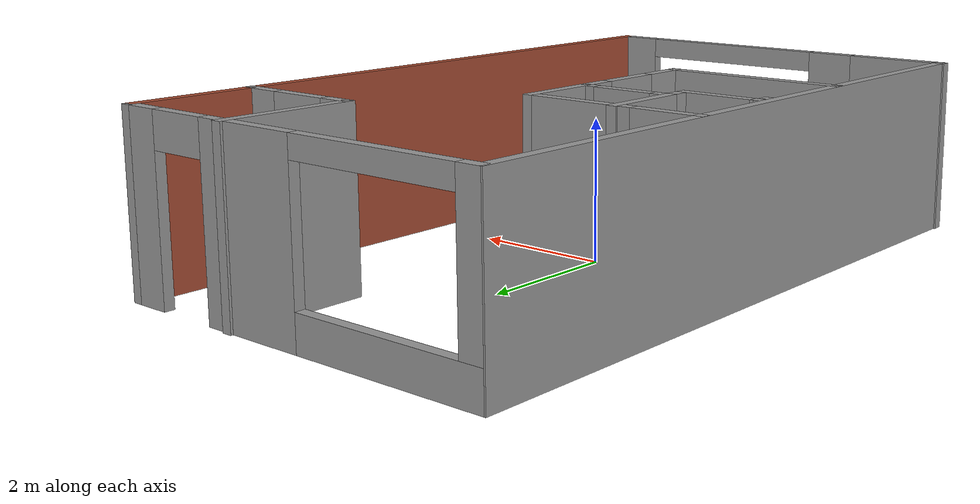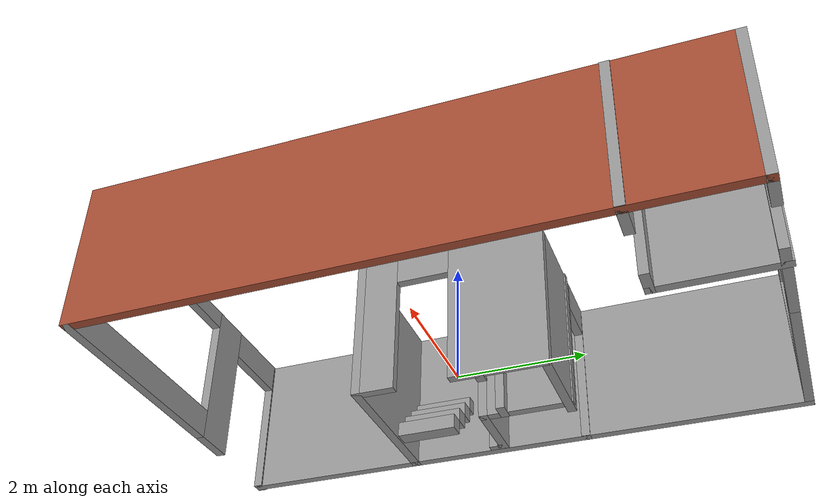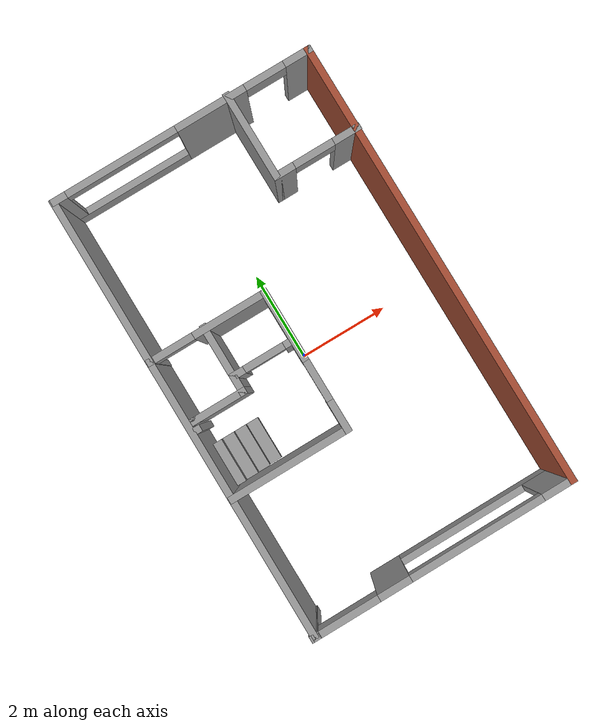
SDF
<?xml version='1.0'?>
<sdf version='1.6'>
  <model name='Livingroomlab'>
    <pose frame=''>0.248675 0.131128 0 0 -0 0</pose>
    <link name='Stairs_1'>
      <visual name='Stairs_1_Visual_0'>
        <pose frame=''>-1.93298 -1.24451 0.125 0 0 -1.5708</pose>
        <geometry>
          <box>
            <size>1 0.2765 0.25</size>
          </box>
        </geometry>
        <material>
          <script>
            <uri>file://media/materials/scripts/gazebo.material</uri>
            <name>Gazebo/Grey</name>
          </script>
          <ambient>1 1 1 1</ambient>
        </material>
        <meta>
          <layer>0</layer>
        </meta>
      </visual>
      <collision name='Stairs_1_Collision_0'>
        <geometry>
          <box>
            <size>1 0.2765 0.25</size>
          </box>
        </geometry>
        <pose frame=''>-1.93298 -1.24451 0.125 0 0 -1.5708</pose>
      </collision>
      <visual name='Stairs_1_Visual_1'>
        <pose frame=''>-2.20948 -1.24451 0.375 0 0 -1.5708</pose>
        <geometry>
          <box>
            <size>1 0.2765 0.25</size>
          </box>
        </geometry>
        <material>
          <script>
            <uri>file://media/materials/scripts/gazebo.material</uri>
            <name>Gazebo/Grey</name>
          </script>
          <ambient>1 1 1 1</ambient>
        </material>
        <meta>
          <layer>0</layer>
        </meta>
      </visual>
      <collision name='Stairs_1_Collision_1'>
        <geometry>
          <box>
            <size>1 0.2765 0.25</size>
          </box>
        </geometry>
        <pose frame=''>-2.20948 -1.24451 0.375 0 0 -1.5708</pose>
      </collision>
      <visual name='Stairs_1_Visual_2'>
        <pose frame=''>-2.48598 -1.24451 0.625 0 0 -1.5708</pose>
        <geometry>
          <box>
            <size>1 0.2765 0.25</size>
          </box>
        </geometry>
        <material>
          <script>
            <uri>file://media/materials/scripts/gazebo.material</uri>
            <name>Gazebo/Grey</name>
          </script>
          <ambient>1 1 1 1</ambient>
        </material>
        <meta>
          <layer>0</layer>
        </meta>
      </visual>
      <collision name='Stairs_1_Collision_2'>
        <geometry>
          <box>
            <size>1 0.2765 0.25</size>
          </box>
        </geometry>
        <pose frame=''>-2.48598 -1.24451 0.625 0 0 -1.5708</pose>
      </collision>
      <visual name='Stairs_1_Visual_3'>
        <pose frame=''>-2.76248 -1.24451 0.875 0 0 -1.5708</pose>
        <geometry>
          <box>
            <size>1 0.2765 0.25</size>
          </box>
        </geometry>
        <material>
          <script>
            <uri>file://media/materials/scripts/gazebo.material</uri>
            <name>Gazebo/Grey</name>
          </script>
          <ambient>1 1 1 1</ambient>
        </material>
        <meta>
          <layer>0</layer>
        </meta>
      </visual>
      <collision name='Stairs_1_Collision_3'>
        <geometry>
          <box>
            <size>1 0.2765 0.25</size>
          </box>
        </geometry>
        <pose frame=''>-2.76248 -1.24451 0.875 0 0 -1.5708</pose>
      </collision>
    </link>
    <link name='Wall_10'>
      <collision name='Wall_10_Collision'>
        <geometry>
          <box>
            <size>0.15 0.15 2.5</size>
          </box>
        </geometry>
        <pose frame=''>0 0 1.25 0 -0 0</pose>
      </collision>
      <visual name='Wall_10_Visual'>
        <pose frame=''>0 0 1.25 0 -0 0</pose>
        <geometry>
          <box>
            <size>0.15 0.15 2.5</size>
          </box>
        </geometry>
        <material>
          <script>
            <uri>file://media/materials/scripts/gazebo.material</uri>
            <name>Gazebo/Grey</name>
          </script>
          <ambient>1 1 1 1</ambient>
        </material>
        <meta>
          <layer>0</layer>
        </meta>
      </visual>
      <pose frame=''>2.91851 4.90773 0 0 -0 0</pose>
    </link>
    <link name='Wall_15'>
      <pose frame=''>0.016769 4.90773 0 0 -0 3.14159</pose>
      <visual name='Wall_15_Visual_0'>
        <pose frame=''>-2.65996 0 1.25 0 -0 0</pose>
        <geometry>
          <box>
            <size>0.633556 0.15 2.5</size>
          </box>
        </geometry>
        <material>
          <script>
            <uri>file://media/materials/scripts/gazebo.material</uri>
            <name>Gazebo/Grey</name>
          </script>
          <ambient>1 1 1 1</ambient>
        </material>
        <meta>
          <layer>0</layer>
        </meta>
      </visual>
      <collision name='Wall_15_Collision_0'>
        <geometry>
          <box>
            <size>0.633556 0.15 2.5</size>
          </box>
        </geometry>
        <pose frame=''>-2.65996 0 1.25 0 -0 0</pose>
      </collision>
      <visual name='Wall_15_Visual_1'>
        <pose frame=''>-0.65252 0 1.25 0 -0 0</pose>
        <geometry>
          <box>
            <size>1.58132 0.15 2.5</size>
          </box>
        </geometry>
        <material>
          <script>
            <uri>file://media/materials/scripts/gazebo.material</uri>
            <name>Gazebo/Grey</name>
          </script>
          <ambient>1 1 1 1</ambient>
        </material>
        <meta>
          <layer>0</layer>
        </meta>
      </visual>
      <collision name='Wall_15_Collision_1'>
        <geometry>
          <box>
            <size>1.58132 0.15 2.5</size>
          </box>
        </geometry>
        <pose frame=''>-0.65252 0 1.25 0 -0 0</pose>
      </collision>
      <visual name='Wall_15_Visual_2'>
        <pose frame=''>1.55744 0 0.25 0 -0 0</pose>
        <geometry>
          <box>
            <size>2.8386 0.15 0.5</size>
          </box>
        </geometry>
        <material>
          <script>
            <uri>file://media/materials/scripts/gazebo.material</uri>
            <name>Gazebo/Grey</name>
          </script>
          <ambient>1 1 1 1</ambient>
        </material>
        <meta>
          <layer>0</layer>
        </meta>
      </visual>
      <collision name='Wall_15_Collision_2'>
        <geometry>
          <box>
            <size>2.8386 0.15 0.5</size>
          </box>
        </geometry>
        <pose frame=''>1.55744 0 0.25 0 -0 0</pose>
      </collision>
      <visual name='Wall_15_Visual_3'>
        <pose frame=''>2.80744 0 1.5 0 -0 0</pose>
        <geometry>
          <box>
            <size>0.338597 0.15 2</size>
          </box>
        </geometry>
        <material>
          <script>
            <uri>file://media/materials/scripts/gazebo.material</uri>
            <name>Gazebo/Grey</name>
          </script>
          <ambient>1 1 1 1</ambient>
        </material>
        <meta>
          <layer>0</layer>
        </meta>
      </visual>
      <collision name='Wall_15_Collision_3'>
        <geometry>
          <box>
            <size>0.338597 0.15 2</size>
          </box>
        </geometry>
        <pose frame=''>2.80744 0 1.5 0 -0 0</pose>
      </collision>
      <visual name='Wall_15_Visual_4'>
        <pose frame=''>-1.89318 0 2.25 0 -0 0</pose>
        <geometry>
          <box>
            <size>0.9 0.15 0.5</size>
          </box>
        </geometry>
        <material>
          <script>
            <uri>file://media/materials/scripts/gazebo.material</uri>
            <name>Gazebo/Grey</name>
          </script>
          <ambient>1 1 1 1</ambient>
        </material>
        <meta>
          <layer>0</layer>
        </meta>
      </visual>
      <collision name='Wall_15_Collision_4'>
        <geometry>
          <box>
            <size>0.9 0.15 0.5</size>
          </box>
        </geometry>
        <pose frame=''>-1.89318 0 2.25 0 -0 0</pose>
      </collision>
      <visual name='Wall_15_Visual_5'>
        <pose frame=''>1.38814 0 2.35 0 -0 0</pose>
        <geometry>
          <box>
            <size>2.5 0.15 0.3</size>
          </box>
        </geometry>
        <material>
          <script>
            <uri>file://media/materials/scripts/gazebo.material</uri>
            <name>Gazebo/Grey</name>
          </script>
          <ambient>1 1 1 1</ambient>
        </material>
        <meta>
          <layer>0</layer>
        </meta>
      </visual>
      <collision name='Wall_15_Collision_5'>
        <geometry>
          <box>
            <size>2.5 0.15 0.3</size>
          </box>
        </geometry>
        <pose frame=''>1.38814 0 2.35 0 -0 0</pose>
      </collision>
    </link>
    <link name='Wall_16'>
      <collision name='Wall_16_Collision'>
        <geometry>
          <box>
            <size>10 0.15 2.5</size>
          </box>
        </geometry>
        <pose frame=''>0 0 1.25 0 -0 0</pose>
      </collision>
      <visual name='Wall_16_Visual'>
        <pose frame=''>0 0 1.25 0 -0 0</pose>
        <geometry>
          <box>
            <size>10 0.15 2.5</size>
          </box>
        </geometry>
        <material>
          <script>
            <uri>file://media/materials/scripts/gazebo.material</uri>
            <name>Gazebo/Grey</name>
          </script>
          <ambient>1 1 1 1</ambient>
        </material>
        <meta>
          <layer>0</layer>
        </meta>
      </visual>
      <pose frame=''>-2.90823 -0.017274 0 0 0 -1.5708</pose>
    </link>
    <link name='Wall_17'>
      <collision name='Wall_17_Collision'>
        <geometry>
          <box>
            <size>0.15 0.15 2.5</size>
          </box>
        </geometry>
        <pose frame=''>0 0 1.25 0 -0 0</pose>
      </collision>
      <visual name='Wall_17_Visual'>
        <pose frame=''>0 0 1.25 0 -0 0</pose>
        <geometry>
          <box>
            <size>0.15 0.15 2.5</size>
          </box>
        </geometry>
        <material>
          <script>
            <uri>file://media/materials/scripts/gazebo.material</uri>
            <name>Gazebo/Grey</name>
          </script>
          <ambient>1 1 1 1</ambient>
        </material>
        <meta>
          <layer>0</layer>
        </meta>
      </visual>
      <pose frame=''>-2.88497 -4.94227 0 0 -0 0</pose>
    </link>
    <link name='Wall_19'>
      <collision name='Wall_19_Collision'>
        <geometry>
          <box>
            <size>2 0.15 2.5</size>
          </box>
        </geometry>
        <pose frame=''>0 0 1.25 0 -0 0</pose>
      </collision>
      <visual name='Wall_19_Visual'>
        <pose frame=''>0 0 1.25 0 -0 0</pose>
        <geometry>
          <box>
            <size>2 0.15 2.5</size>
          </box>
        </geometry>
        <material>
          <script>
            <uri>file://media/materials/scripts/gazebo.material</uri>
            <name>Gazebo/Grey</name>
          </script>
          <ambient>1 1 1 1</ambient>
        </material>
        <meta>
          <layer>0</layer>
        </meta>
      </visual>
      <pose frame=''>1.08149 4.01727 0 0 0 -1.5708</pose>
    </link>
    <link name='Wall_20'>
      <pose frame=''>2.00649 3.09227 0 0 -0 0</pose>
      <visual name='Wall_20_Visual_0'>
        <pose frame=''>-0.756805 0 1.25 0 -0 0</pose>
        <geometry>
          <box>
            <size>0.48639 0.15 2.5</size>
          </box>
        </geometry>
        <material>
          <script>
            <uri>file://media/materials/scripts/gazebo.material</uri>
            <name>Gazebo/Grey</name>
          </script>
          <ambient>1 1 1 1</ambient>
        </material>
        <meta>
          <layer>0</layer>
        </meta>
      </visual>
      <collision name='Wall_20_Collision_0'>
        <geometry>
          <box>
            <size>0.48639 0.15 2.5</size>
          </box>
        </geometry>
        <pose frame=''>-0.756805 0 1.25 0 -0 0</pose>
      </collision>
      <visual name='Wall_20_Visual_1'>
        <pose frame=''>0.693195 0 1.25 0 -0 0</pose>
        <geometry>
          <box>
            <size>0.61361 0.15 2.5</size>
          </box>
        </geometry>
        <material>
          <script>
            <uri>file://media/materials/scripts/gazebo.material</uri>
            <name>Gazebo/Grey</name>
          </script>
          <ambient>1 1 1 1</ambient>
        </material>
        <meta>
          <layer>0</layer>
        </meta>
      </visual>
      <collision name='Wall_20_Collision_1'>
        <geometry>
          <box>
            <size>0.61361 0.15 2.5</size>
          </box>
        </geometry>
        <pose frame=''>0.693195 0 1.25 0 -0 0</pose>
      </collision>
      <visual name='Wall_20_Visual_2'>
        <pose frame=''>-0.06361 0 2.25 0 -0 0</pose>
        <geometry>
          <box>
            <size>0.9 0.15 0.5</size>
          </box>
        </geometry>
        <material>
          <script>
            <uri>file://media/materials/scripts/gazebo.material</uri>
            <name>Gazebo/Grey</name>
          </script>
          <ambient>1 1 1 1</ambient>
        </material>
        <meta>
          <layer>0</layer>
        </meta>
      </visual>
      <collision name='Wall_20_Collision_2'>
        <geometry>
          <box>
            <size>0.9 0.15 0.5</size>
          </box>
        </geometry>
        <pose frame=''>-0.06361 0 2.25 0 -0 0</pose>
      </collision>
    </link>
    <link name='Wall_21'>
      <collision name='Wall_21_Collision'>
        <geometry>
          <box>
            <size>0.15 0.15 2.5</size>
          </box>
        </geometry>
        <pose frame=''>0 0 1.25 0 -0 0</pose>
      </collision>
      <visual name='Wall_21_Visual'>
        <pose frame=''>0 0 1.25 0 -0 0</pose>
        <geometry>
          <box>
            <size>0.15 0.15 2.5</size>
          </box>
        </geometry>
        <material>
          <script>
            <uri>file://media/materials/scripts/gazebo.material</uri>
            <name>Gazebo/Grey</name>
          </script>
          <ambient>1 1 1 1</ambient>
        </material>
        <meta>
          <layer>0</layer>
        </meta>
      </visual>
      <pose frame=''>2.93149 3.09227 0 0 -0 0</pose>
    </link>
    <link name='Wall_23'>
      <pose frame=''>-1.59731 1.2506 0 0 -0 0</pose>
      <visual name='Wall_23_Visual_0'>
        <pose frame=''>-1.29946 0 1.25 0 -0 0</pose>
        <geometry>
          <box>
            <size>0.151074 0.15 2.5</size>
          </box>
        </geometry>
        <material>
          <script>
            <uri>file://media/materials/scripts/gazebo.material</uri>
            <name>Gazebo/Grey</name>
          </script>
          <ambient>1 1 1 1</ambient>
        </material>
        <meta>
          <layer>0</layer>
        </meta>
      </visual>
      <collision name='Wall_23_Collision_0'>
        <geometry>
          <box>
            <size>0.151074 0.15 2.5</size>
          </box>
        </geometry>
        <pose frame=''>-1.29946 0 1.25 0 -0 0</pose>
      </collision>
      <visual name='Wall_23_Visual_1'>
        <pose frame=''>0.525537 0 1.25 0 -0 0</pose>
        <geometry>
          <box>
            <size>1.69893 0.15 2.5</size>
          </box>
        </geometry>
        <material>
          <script>
            <uri>file://media/materials/scripts/gazebo.material</uri>
            <name>Gazebo/Grey</name>
          </script>
          <ambient>1 1 1 1</ambient>
        </material>
        <meta>
          <layer>0</layer>
        </meta>
      </visual>
      <collision name='Wall_23_Collision_1'>
        <geometry>
          <box>
            <size>1.69893 0.15 2.5</size>
          </box>
        </geometry>
        <pose frame=''>0.525537 0 1.25 0 -0 0</pose>
      </collision>
      <visual name='Wall_23_Visual_2'>
        <pose frame=''>-0.773926 0 2.25 0 -0 0</pose>
        <geometry>
          <box>
            <size>0.9 0.15 0.5</size>
          </box>
        </geometry>
        <material>
          <script>
            <uri>file://media/materials/scripts/gazebo.material</uri>
            <name>Gazebo/Grey</name>
          </script>
          <ambient>1 1 1 1</ambient>
        </material>
        <meta>
          <layer>0</layer>
        </meta>
      </visual>
      <collision name='Wall_23_Collision_2'>
        <geometry>
          <box>
            <size>0.9 0.15 0.5</size>
          </box>
        </geometry>
        <pose frame=''>-0.773926 0 2.25 0 -0 0</pose>
      </collision>
    </link>
    <link name='Wall_26'>
      <collision name='Wall_26_Collision'>
        <geometry>
          <box>
            <size>0.15 0.15 2.5</size>
          </box>
        </geometry>
        <pose frame=''>0 0 1.25 0 -0 0</pose>
      </collision>
      <visual name='Wall_26_Visual'>
        <pose frame=''>0 0 1.25 0 -0 0</pose>
        <geometry>
          <box>
            <size>0.15 0.15 2.5</size>
          </box>
        </geometry>
        <material>
          <script>
            <uri>file://media/materials/scripts/gazebo.material</uri>
            <name>Gazebo/Grey</name>
          </script>
          <ambient>1 1 1 1</ambient>
        </material>
        <meta>
          <layer>0</layer>
        </meta>
      </visual>
      <pose frame=''>-2.78426 -0.349398 0 0 -0 0</pose>
    </link>
    <link name='Wall_28'>
      <pose frame=''>-0.297309 -0.299398 0 0 0 -1.5708</pose>
      <visual name='Wall_28_Visual_0'>
        <pose frame=''>-0.81151 0 1.25 0 -0 0</pose>
        <geometry>
          <box>
            <size>1.62698 0.15 2.5</size>
          </box>
        </geometry>
        <material>
          <script>
            <uri>file://media/materials/scripts/gazebo.material</uri>
            <name>Gazebo/Grey</name>
          </script>
          <ambient>1 1 1 1</ambient>
        </material>
        <meta>
          <layer>0</layer>
        </meta>
      </visual>
      <collision name='Wall_28_Collision_0'>
        <geometry>
          <box>
            <size>1.62698 0.15 2.5</size>
          </box>
        </geometry>
        <pose frame=''>-0.81151 0 1.25 0 -0 0</pose>
      </collision>
      <visual name='Wall_28_Visual_1'>
        <pose frame=''>1.26349 0 1.25 0 -0 0</pose>
        <geometry>
          <box>
            <size>0.72302 0.15 2.5</size>
          </box>
        </geometry>
        <material>
          <script>
            <uri>file://media/materials/scripts/gazebo.material</uri>
            <name>Gazebo/Grey</name>
          </script>
          <ambient>1 1 1 1</ambient>
        </material>
        <meta>
          <layer>0</layer>
        </meta>
      </visual>
      <collision name='Wall_28_Collision_1'>
        <geometry>
          <box>
            <size>0.72302 0.15 2.5</size>
          </box>
        </geometry>
        <pose frame=''>1.26349 0 1.25 0 -0 0</pose>
      </collision>
      <visual name='Wall_28_Visual_2'>
        <pose frame=''>0.45198 0 2.25 0 -0 0</pose>
        <geometry>
          <box>
            <size>0.9 0.15 0.5</size>
          </box>
        </geometry>
        <material>
          <script>
            <uri>file://media/materials/scripts/gazebo.material</uri>
            <name>Gazebo/Grey</name>
          </script>
          <ambient>1 1 1 1</ambient>
        </material>
        <meta>
          <layer>0</layer>
        </meta>
      </visual>
      <collision name='Wall_28_Collision_2'>
        <geometry>
          <box>
            <size>0.9 0.15 0.5</size>
          </box>
        </geometry>
        <pose frame=''>0.45198 0 2.25 0 -0 0</pose>
      </collision>
    </link>
    <link name='Wall_29'>
      <collision name='Wall_29_Collision'>
        <geometry>
          <box>
            <size>2.75 0.15 2.5</size>
          </box>
        </geometry>
        <pose frame=''>0 0 1.25 0 -0 0</pose>
      </collision>
      <visual name='Wall_29_Visual'>
        <pose frame=''>0 0 1.25 0 -0 0</pose>
        <geometry>
          <box>
            <size>2.75 0.15 2.5</size>
          </box>
        </geometry>
        <material>
          <script>
            <uri>file://media/materials/scripts/gazebo.material</uri>
            <name>Gazebo/Grey</name>
          </script>
          <ambient>1 1 1 1</ambient>
        </material>
        <meta>
          <layer>0</layer>
        </meta>
      </visual>
      <pose frame=''>-1.59731 -1.8494 0 0 -0 3.14159</pose>
    </link>
    <link name='Wall_30'>
      <collision name='Wall_30_Collision'>
        <geometry>
          <box>
            <size>0.15 0.15 2.5</size>
          </box>
        </geometry>
        <pose frame=''>0 0 1.25 0 -0 0</pose>
      </collision>
      <visual name='Wall_30_Visual'>
        <pose frame=''>0 0 1.25 0 -0 0</pose>
        <geometry>
          <box>
            <size>0.15 0.15 2.5</size>
          </box>
        </geometry>
        <material>
          <script>
            <uri>file://media/materials/scripts/gazebo.material</uri>
            <name>Gazebo/Grey</name>
          </script>
          <ambient>1 1 1 1</ambient>
        </material>
        <meta>
          <layer>0</layer>
        </meta>
      </visual>
      <pose frame=''>-2.89731 -1.8494 0 0 -0 0</pose>
    </link>
    <link name='Wall_32'>
      <collision name='Wall_32_Collision'>
        <geometry>
          <box>
            <size>1.25 0.15 2.5</size>
          </box>
        </geometry>
        <pose frame=''>0 0 1.25 0 -0 0</pose>
      </collision>
      <visual name='Wall_32_Visual'>
        <pose frame=''>0 0 1.25 0 -0 0</pose>
        <geometry>
          <box>
            <size>1.25 0.15 2.5</size>
          </box>
        </geometry>
        <material>
          <script>
            <uri>file://media/materials/scripts/gazebo.material</uri>
            <name>Gazebo/Grey</name>
          </script>
          <ambient>1 1 1 1</ambient>
        </material>
        <meta>
          <layer>0</layer>
        </meta>
      </visual>
      <pose frame=''>-1.65945 0.725303 0 0 0 -1.5708</pose>
    </link>
    <link name='Wall_33'>
      <pose frame=''>-0.984448 0.175303 0 0 -0 0</pose>
      <visual name='Wall_33_Visual_0'>
        <pose frame=''>-0.587699 0 1.25 0 -0 0</pose>
        <geometry>
          <box>
            <size>0.324602 0.15 2.5</size>
          </box>
        </geometry>
        <material>
          <script>
            <uri>file://media/materials/scripts/gazebo.material</uri>
            <name>Gazebo/Grey</name>
          </script>
          <ambient>1 1 1 1</ambient>
        </material>
        <meta>
          <layer>0</layer>
        </meta>
      </visual>
      <collision name='Wall_33_Collision_0'>
        <geometry>
          <box>
            <size>0.324602 0.15 2.5</size>
          </box>
        </geometry>
        <pose frame=''>-0.587699 0 1.25 0 -0 0</pose>
      </collision>
      <visual name='Wall_33_Visual_1'>
        <pose frame=''>0.612301 0 1.25 0 -0 0</pose>
        <geometry>
          <box>
            <size>0.275398 0.15 2.5</size>
          </box>
        </geometry>
        <material>
          <script>
            <uri>file://media/materials/scripts/gazebo.material</uri>
            <name>Gazebo/Grey</name>
          </script>
          <ambient>1 1 1 1</ambient>
        </material>
        <meta>
          <layer>0</layer>
        </meta>
      </visual>
      <collision name='Wall_33_Collision_1'>
        <geometry>
          <box>
            <size>0.275398 0.15 2.5</size>
          </box>
        </geometry>
        <pose frame=''>0.612301 0 1.25 0 -0 0</pose>
      </collision>
      <visual name='Wall_33_Visual_2'>
        <pose frame=''>0.024602 0 2.25 0 -0 0</pose>
        <geometry>
          <box>
            <size>0.9 0.15 0.5</size>
          </box>
        </geometry>
        <material>
          <script>
            <uri>file://media/materials/scripts/gazebo.material</uri>
            <name>Gazebo/Grey</name>
          </script>
          <ambient>1 1 1 1</ambient>
        </material>
        <meta>
          <layer>0</layer>
        </meta>
      </visual>
      <collision name='Wall_33_Collision_2'>
        <geometry>
          <box>
            <size>0.9 0.15 0.5</size>
          </box>
        </geometry>
        <pose frame=''>0.024602 0 2.25 0 -0 0</pose>
      </collision>
    </link>
    <link name='Wall_35'>
      <collision name='Wall_35_Collision'>
        <geometry>
          <box>
            <size>0.5 0.15 2.5</size>
          </box>
        </geometry>
        <pose frame=''>0 0 1.25 0 -0 0</pose>
      </collision>
      <visual name='Wall_35_Visual'>
        <pose frame=''>0 0 1.25 0 -0 0</pose>
        <geometry>
          <box>
            <size>0.5 0.15 2.5</size>
          </box>
        </geometry>
        <material>
          <script>
            <uri>file://media/materials/scripts/gazebo.material</uri>
            <name>Gazebo/Grey</name>
          </script>
          <ambient>1 1 1 1</ambient>
        </material>
        <meta>
          <layer>0</layer>
        </meta>
      </visual>
      <pose frame=''>-1.65945 0.000303 0 0 0 -1.5708</pose>
    </link>
    <link name='Wall_36'>
      <collision name='Wall_36_Collision'>
        <geometry>
          <box>
            <size>1.25 0.15 2.5</size>
          </box>
        </geometry>
        <pose frame=''>0 0 1.25 0 -0 0</pose>
      </collision>
      <visual name='Wall_36_Visual'>
        <pose frame=''>0 0 1.25 0 -0 0</pose>
        <geometry>
          <box>
            <size>1.25 0.15 2.5</size>
          </box>
        </geometry>
        <material>
          <script>
            <uri>file://media/materials/scripts/gazebo.material</uri>
            <name>Gazebo/Grey</name>
          </script>
          <ambient>1 1 1 1</ambient>
        </material>
        <meta>
          <layer>0</layer>
        </meta>
      </visual>
      <pose frame=''>-2.20945 -0.174697 0 0 -0 3.14159</pose>
    </link>
    <link name='Wall_37'>
      <collision name='Wall_37_Collision'>
        <geometry>
          <box>
            <size>0.15 0.15 2.5</size>
          </box>
        </geometry>
        <pose frame=''>0 0 1.25 0 -0 0</pose>
      </collision>
      <visual name='Wall_37_Visual'>
        <pose frame=''>0 0 1.25 0 -0 0</pose>
        <geometry>
          <box>
            <size>0.15 0.15 2.5</size>
          </box>
        </geometry>
        <material>
          <script>
            <uri>file://media/materials/scripts/gazebo.material</uri>
            <name>Gazebo/Grey</name>
          </script>
          <ambient>1 1 1 1</ambient>
        </material>
        <meta>
          <layer>0</layer>
        </meta>
      </visual>
      <pose frame=''>-2.75945 -0.174697 0 0 -0 0</pose>
    </link>
    <link name='Wall_4'>
      <pose frame=''>-0.006493 -4.94227 0 0 -0 0</pose>
      <visual name='Wall_4_Visual_0'>
        <pose frame=''>-2.8964 0 1.25 0 -0 0</pose>
        <geometry>
          <box>
            <size>0.207193 0.15 2.5</size>
          </box>
        </geometry>
        <material>
          <script>
            <uri>file://media/materials/scripts/gazebo.material</uri>
            <name>Gazebo/Grey</name>
          </script>
          <ambient>1 1 1 1</ambient>
        </material>
        <meta>
          <layer>0</layer>
        </meta>
      </visual>
      <collision name='Wall_4_Collision_0'>
        <geometry>
          <box>
            <size>0.207193 0.15 2.5</size>
          </box>
        </geometry>
        <pose frame=''>-2.8964 0 1.25 0 -0 0</pose>
      </collision>
      <visual name='Wall_4_Visual_1'>
        <pose frame=''>-1.0981 0 1.25 0 -0 0</pose>
        <geometry>
          <box>
            <size>0.722472 0.15 2.5</size>
          </box>
        </geometry>
        <material>
          <script>
            <uri>file://media/materials/scripts/gazebo.material</uri>
            <name>Gazebo/Grey</name>
          </script>
          <ambient>1 1 1 1</ambient>
        </material>
        <meta>
          <layer>0</layer>
        </meta>
      </visual>
      <collision name='Wall_4_Collision_1'>
        <geometry>
          <box>
            <size>0.722472 0.15 2.5</size>
          </box>
        </geometry>
        <pose frame=''>-1.0981 0 1.25 0 -0 0</pose>
      </collision>
      <visual name='Wall_4_Visual_2'>
        <pose frame=''>1.13157 0 0.25 0 -0 0</pose>
        <geometry>
          <box>
            <size>3.73686 0.15 0.5</size>
          </box>
        </geometry>
        <material>
          <script>
            <uri>file://media/materials/scripts/gazebo.material</uri>
            <name>Gazebo/Grey</name>
          </script>
          <ambient>1 1 1 1</ambient>
        </material>
        <meta>
          <layer>0</layer>
        </meta>
      </visual>
      <collision name='Wall_4_Collision_2'>
        <geometry>
          <box>
            <size>3.73686 0.15 0.5</size>
          </box>
        </geometry>
        <pose frame=''>1.13157 0 0.25 0 -0 0</pose>
      </collision>
      <visual name='Wall_4_Visual_3'>
        <pose frame=''>2.63157 0 1.5 0 -0 0</pose>
        <geometry>
          <box>
            <size>0.736863 0.15 2</size>
          </box>
        </geometry>
        <material>
          <script>
            <uri>file://media/materials/scripts/gazebo.material</uri>
            <name>Gazebo/Grey</name>
          </script>
          <ambient>1 1 1 1</ambient>
        </material>
        <meta>
          <layer>0</layer>
        </meta>
      </visual>
      <collision name='Wall_4_Collision_3'>
        <geometry>
          <box>
            <size>0.736863 0.15 2</size>
          </box>
        </geometry>
        <pose frame=''>2.63157 0 1.5 0 -0 0</pose>
      </collision>
      <visual name='Wall_4_Visual_4'>
        <pose frame=''>-2.12607 0 2.25 0 -0 0</pose>
        <geometry>
          <box>
            <size>1.33347 0.15 0.5</size>
          </box>
        </geometry>
        <material>
          <script>
            <uri>file://media/materials/scripts/gazebo.material</uri>
            <name>Gazebo/Grey</name>
          </script>
          <ambient>1 1 1 1</ambient>
        </material>
        <meta>
          <layer>0</layer>
        </meta>
      </visual>
      <collision name='Wall_4_Collision_4'>
        <geometry>
          <box>
            <size>1.33347 0.15 0.5</size>
          </box>
        </geometry>
        <pose frame=''>-2.12607 0 2.25 0 -0 0</pose>
      </collision>
      <visual name='Wall_4_Visual_5'>
        <pose frame=''>0.763137 0 2.35 0 -0 0</pose>
        <geometry>
          <box>
            <size>3 0.15 0.3</size>
          </box>
        </geometry>
        <material>
          <script>
            <uri>file://media/materials/scripts/gazebo.material</uri>
            <name>Gazebo/Grey</name>
          </script>
          <ambient>1 1 1 1</ambient>
        </material>
        <meta>
          <layer>0</layer>
        </meta>
      </visual>
      <collision name='Wall_4_Collision_5'>
        <geometry>
          <box>
            <size>3 0.15 0.3</size>
          </box>
        </geometry>
        <pose frame=''>0.763137 0 2.35 0 -0 0</pose>
      </collision>
    </link>
    <link name='Wall_9'>
      <collision name='Wall_9_Collision'>
        <geometry>
          <box>
            <size>10 0.15 2.5</size>
          </box>
        </geometry>
        <pose frame=''>0 0 1.25 0 -0 0</pose>
      </collision>
      <visual name='Wall_9_Visual'>
        <pose frame=''>0 0 1.25 0 -0 0</pose>
        <geometry>
          <box>
            <size>10 0.15 2.5</size>
          </box>
        </geometry>
        <material>
          <script>
            <uri>file://media/materials/scripts/gazebo.material</uri>
            <name>Gazebo/Bricks</name>
          </script>
          <ambient>0.996078 0.47451 0.0196078 1</ambient>
        </material>
        <meta>
          <layer>0</layer>
        </meta>
      </visual>
      <pose frame=''>2.91851 -0.017274 0 0 -0 1.5708</pose>
    </link>
    <static>1</static>
  </model>
</sdf>
